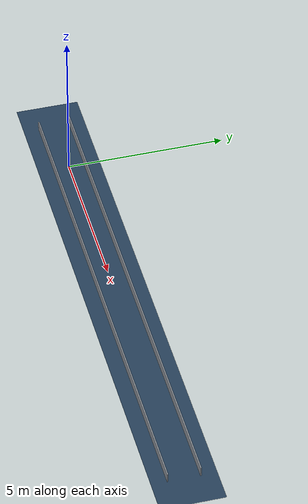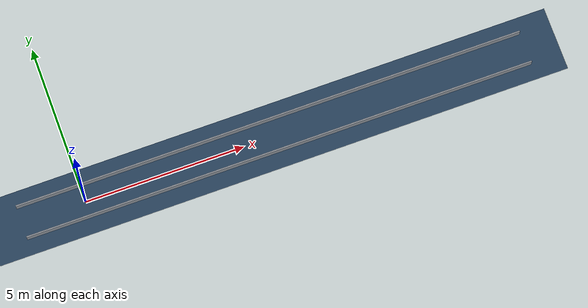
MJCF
<mujoco model="straight_corridor">

    <asset>
        <texture name="corridor_grid" type="2d" builtin="checker" width="512" height="512"
                 rgb1=".1 .2 .3" rgb2=".2 .3 .4"/>
        <material name="corridor_floor" texture="corridor_grid" texrepeat="1 1" texuniform="true"
                  reflectance=".2"/>
        <material name="wall" rgba=".55 .57 .60 1"/>
    </asset>

    <default>
        <default class="scenery">
            <geom type="box" material="wall" condim="3" friction="1.0 0.1 0.1"/>
        </default>
    </default>

    <worldbody>
        <geom name="floor" type="plane" size="9 1 .01" pos="6 0 0"
              material="corridor_floor" friction="1.5 0.1 0.1"/>
        <geom class="scenery" name="corridor_wall_left"  pos="6 .5 .15" size="8 .02 .15"/>
        <geom class="scenery" name="corridor_wall_right" pos="6 -.5 .15" size="8 .02 .15"/>
    </worldbody>
</mujoco>
